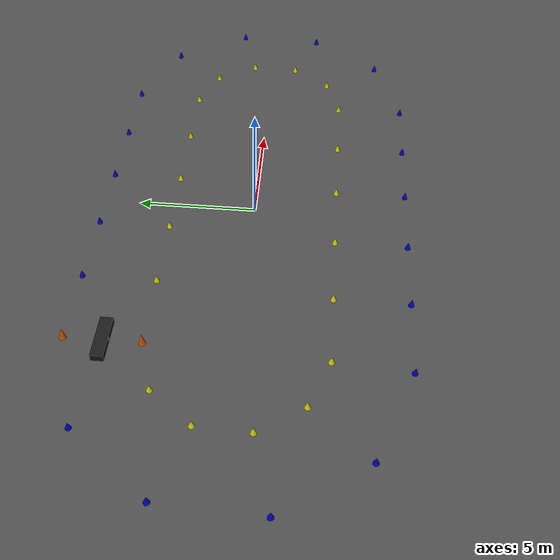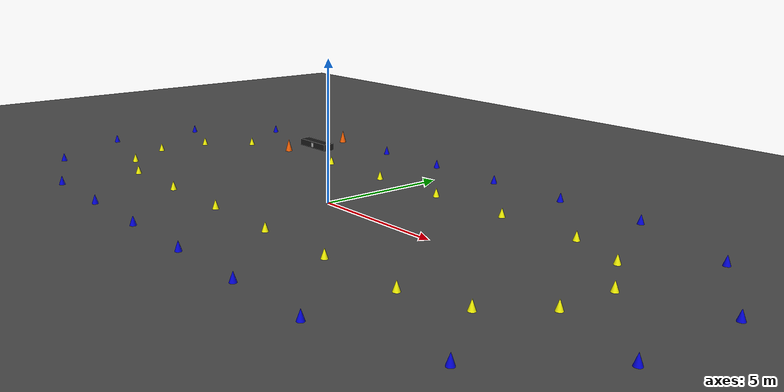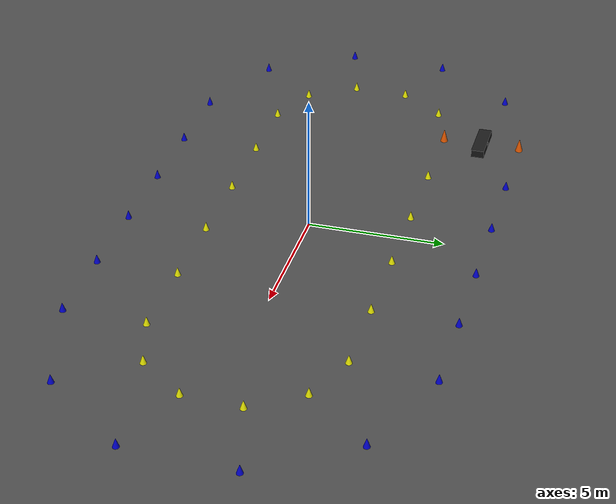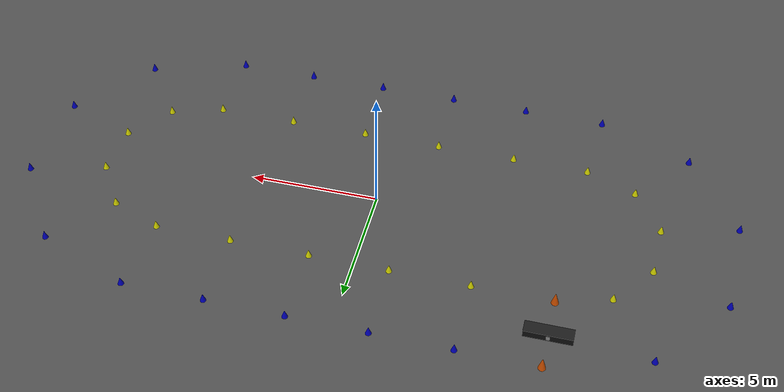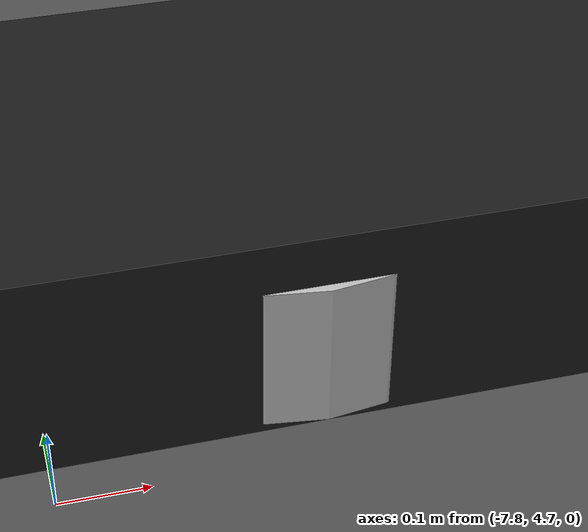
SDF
<?xml version="1.0" ?>
<sdf version="1.11">
  <world name="track">

    <!-- Physics: DART engine, 1 ms step. Good default for vehicle dynamics. -->
    <physics name="default" type="dart">
      <max_step_size>0.001</max_step_size>
      <real_time_factor>1.0</real_time_factor>
    </physics>

    <!-- Required Gazebo system plugins -->
    <plugin filename="gz-sim-physics-system"
            name="gz::sim::systems::Physics"/>
    <plugin filename="gz-sim-scene-broadcaster-system"
            name="gz::sim::systems::SceneBroadcaster"/>
    <plugin filename="gz-sim-user-commands-system"
            name="gz::sim::systems::UserCommands"/>
    <!-- Required for camera/lidar sensors to actually initialize and publish
         data — without this, sensor elements in a model are inert. -->
    <plugin filename="gz-sim-sensors-system"
            name="gz::sim::systems::Sensors">
      <render_engine>ogre2</render_engine>
    </plugin>

    <!-- Lighting -->
    <light name="sun" type="directional">
      <cast_shadows>true</cast_shadows>
      <pose>0 0 10 0 0 0</pose>
      <diffuse>0.8 0.8 0.8 1</diffuse>
      <specular>0.2 0.2 0.2 1</specular>
      <direction>-0.5 0.1 -0.9</direction>
    </light>

    <!-- Ground plane -->
    <model name="ground_plane">
      <static>true</static>
      <link name="link">
        <collision name="collision">
          <geometry>
            <plane>
              <normal>0 0 1</normal>
              <size>200 200</size>
            </plane>
          </geometry>
        </collision>
        <visual name="visual">
          <geometry>
            <plane>
              <normal>0 0 1</normal>
              <size>200 200</size>
            </plane>
          </geometry>
          <material>
            <ambient>0.3 0.3 0.3 1</ambient>
            <diffuse>0.3 0.3 0.3 1</diffuse>
          </material>
        </visual>
      </link>
    </model>

    <!-- FSD car, spawned at the start/finish gate -->
    <include>
      <uri>model://fsd_car</uri>
      <pose>-7.5 5.0 0.1 0 0 0</pose>
    </include>

    <!-- ==================== ORANGE — start/finish gate ==================== -->
    <include>
      <uri>model://cone_orange</uri>
      <name>cone_orange_00</name>
      <pose>-7.500 6.500 0.2525 0 0 0</pose>
    </include>
    <include>
      <uri>model://cone_orange</uri>
      <name>cone_orange_01</name>
      <pose>-7.500 3.500 0.2525 0 0 0</pose>
    </include>

    <!-- ==================== BLUE — left boundary ==================== -->
    <include>
      <uri>model://cone_blue</uri>
      <name>cone_blue_01</name>
      <pose>-4.429 6.500 0.1625 0 0 0</pose>
    </include>
    <include>
      <uri>model://cone_blue</uri>
      <name>cone_blue_02</name>
      <pose>-1.358 6.500 0.1625 0 0 0</pose>
    </include>
    <include>
      <uri>model://cone_blue</uri>
      <name>cone_blue_03</name>
      <pose>1.712 6.500 0.1625 0 0 0</pose>
    </include>
    <include>
      <uri>model://cone_blue</uri>
      <name>cone_blue_04</name>
      <pose>4.783 6.500 0.1625 0 0 0</pose>
    </include>
    <include>
      <uri>model://cone_blue</uri>
      <name>cone_blue_05</name>
      <pose>7.960 6.484 0.1625 0 0 0</pose>
    </include>
    <include>
      <uri>model://cone_blue</uri>
      <name>cone_blue_06</name>
      <pose>11.612 5.034 0.1625 0 0 0</pose>
    </include>
    <include>
      <uri>model://cone_blue</uri>
      <name>cone_blue_07</name>
      <pose>13.762 1.744 0.1625 0 0 0</pose>
    </include>
    <include>
      <uri>model://cone_blue</uri>
      <name>cone_blue_08</name>
      <pose>13.623 -2.183 0.1625 0 0 0</pose>
    </include>
    <include>
      <uri>model://cone_blue</uri>
      <name>cone_blue_09</name>
      <pose>11.246 -5.312 0.1625 0 0 0</pose>
    </include>
    <include>
      <uri>model://cone_blue</uri>
      <name>cone_blue_10</name>
      <pose>7.500 -6.500 0.1625 0 0 0</pose>
    </include>
    <include>
      <uri>model://cone_blue</uri>
      <name>cone_blue_11</name>
      <pose>4.429 -6.500 0.1625 0 0 0</pose>
    </include>
    <include>
      <uri>model://cone_blue</uri>
      <name>cone_blue_12</name>
      <pose>1.358 -6.500 0.1625 0 0 0</pose>
    </include>
    <include>
      <uri>model://cone_blue</uri>
      <name>cone_blue_13</name>
      <pose>-1.712 -6.500 0.1625 0 0 0</pose>
    </include>
    <include>
      <uri>model://cone_blue</uri>
      <name>cone_blue_14</name>
      <pose>-4.783 -6.500 0.1625 0 0 0</pose>
    </include>
    <include>
      <uri>model://cone_blue</uri>
      <name>cone_blue_15</name>
      <pose>-7.960 -6.484 0.1625 0 0 0</pose>
    </include>
    <include>
      <uri>model://cone_blue</uri>
      <name>cone_blue_16</name>
      <pose>-11.612 -5.034 0.1625 0 0 0</pose>
    </include>
    <include>
      <uri>model://cone_blue</uri>
      <name>cone_blue_17</name>
      <pose>-13.762 -1.744 0.1625 0 0 0</pose>
    </include>
    <include>
      <uri>model://cone_blue</uri>
      <name>cone_blue_18</name>
      <pose>-13.623 2.183 0.1625 0 0 0</pose>
    </include>
    <include>
      <uri>model://cone_blue</uri>
      <name>cone_blue_19</name>
      <pose>-11.246 5.312 0.1625 0 0 0</pose>
    </include>

    <!-- ==================== YELLOW — right boundary ==================== -->
    <include>
      <uri>model://cone_yellow</uri>
      <name>cone_yellow_01</name>
      <pose>-4.429 3.500 0.1625 0 0 0</pose>
    </include>
    <include>
      <uri>model://cone_yellow</uri>
      <name>cone_yellow_02</name>
      <pose>-1.358 3.500 0.1625 0 0 0</pose>
    </include>
    <include>
      <uri>model://cone_yellow</uri>
      <name>cone_yellow_03</name>
      <pose>1.712 3.500 0.1625 0 0 0</pose>
    </include>
    <include>
      <uri>model://cone_yellow</uri>
      <name>cone_yellow_04</name>
      <pose>4.783 3.500 0.1625 0 0 0</pose>
    </include>
    <include>
      <uri>model://cone_yellow</uri>
      <name>cone_yellow_05</name>
      <pose>7.748 3.491 0.1625 0 0 0</pose>
    </include>
    <include>
      <uri>model://cone_yellow</uri>
      <name>cone_yellow_06</name>
      <pose>9.714 2.711 0.1625 0 0 0</pose>
    </include>
    <include>
      <uri>model://cone_yellow</uri>
      <name>cone_yellow_07</name>
      <pose>10.872 0.939 0.1625 0 0 0</pose>
    </include>
    <include>
      <uri>model://cone_yellow</uri>
      <name>cone_yellow_08</name>
      <pose>10.797 -1.175 0.1625 0 0 0</pose>
    </include>
    <include>
      <uri>model://cone_yellow</uri>
      <name>cone_yellow_09</name>
      <pose>9.517 -2.860 0.1625 0 0 0</pose>
    </include>
    <include>
      <uri>model://cone_yellow</uri>
      <name>cone_yellow_10</name>
      <pose>7.500 -3.500 0.1625 0 0 0</pose>
    </include>
    <include>
      <uri>model://cone_yellow</uri>
      <name>cone_yellow_11</name>
      <pose>4.429 -3.500 0.1625 0 0 0</pose>
    </include>
    <include>
      <uri>model://cone_yellow</uri>
      <name>cone_yellow_12</name>
      <pose>1.358 -3.500 0.1625 0 0 0</pose>
    </include>
    <include>
      <uri>model://cone_yellow</uri>
      <name>cone_yellow_13</name>
      <pose>-1.712 -3.500 0.1625 0 0 0</pose>
    </include>
    <include>
      <uri>model://cone_yellow</uri>
      <name>cone_yellow_14</name>
      <pose>-4.783 -3.500 0.1625 0 0 0</pose>
    </include>
    <include>
      <uri>model://cone_yellow</uri>
      <name>cone_yellow_15</name>
      <pose>-7.748 -3.491 0.1625 0 0 0</pose>
    </include>
    <include>
      <uri>model://cone_yellow</uri>
      <name>cone_yellow_16</name>
      <pose>-9.714 -2.711 0.1625 0 0 0</pose>
    </include>
    <include>
      <uri>model://cone_yellow</uri>
      <name>cone_yellow_17</name>
      <pose>-10.872 -0.939 0.1625 0 0 0</pose>
    </include>
    <include>
      <uri>model://cone_yellow</uri>
      <name>cone_yellow_18</name>
      <pose>-10.797 1.175 0.1625 0 0 0</pose>
    </include>
    <include>
      <uri>model://cone_yellow</uri>
      <name>cone_yellow_19</name>
      <pose>-9.517 2.860 0.1625 0 0 0</pose>
    </include>
  </world>
</sdf>

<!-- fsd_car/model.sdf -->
<sdf version="1.10">
  <model name="fsd_car">

    <link name="chassis">
      <inertial>
        <mass>230</mass>           <!-- kg, total vehicle mass (placeholder, FS-typical) -->
        <inertia>
          <ixx>6.52</ixx>          <!-- kg·m², roll -->
          <iyy>63.8</iyy>          <!-- kg·m², pitch -->
          <izz>66.9</izz>          <!-- kg·m², yaw -->
          <ixy>0</ixy>
          <ixz>0</ixz>
          <iyz>0</iyz>
        </inertia>
      </inertial>
      <visual name="chassis_visual">
        <!-- TODO: replace box with a proper mesh once CAD is available -->
        <geometry>
          <box><size>1.8 0.5 0.3</size></box>  <!-- length width height, meters -->
        </geometry>
        <material>
          <ambient>0.1 0.1 0.1 1</ambient>
          <diffuse>0.1 0.1 0.1 1</diffuse>
        </material>
      </visual>
      <collision name="chassis_collision">
        <geometry>
          <box><size>1.8 0.5 0.3</size></box>
        </geometry>
      </collision>

      <sensor name="os1_128" type="gpu_lidar">
        <pose>0.3 0 0.35 0 0 0</pose>
        <update_rate>10</update_rate>
        <lidar>
          <scan>
            <horizontal>
              <samples>1024</samples>
              <min_angle>-3.14159</min_angle>
              <max_angle>3.14159</max_angle>
            </horizontal>
            <vertical>
              <samples>32</samples>
              <min_angle>-0.3927</min_angle>
              <max_angle>0.3927</max_angle>
            </vertical>
          </scan>
          <range>
            <min>0.3</min>
            <max>120.0</max>
          </range>
          <noise>
            <type>gaussian</type>
            <stddev>0.008</stddev>
          </noise>
        </lidar>
        <always_on>true</always_on>
        <visualize>false</visualize>
        <topic>/lidar/points</topic>
      </sensor>

      <sensor name="camera_front" type="camera">
        <pose>0.9 0 1.0 0 0.3 0</pose>  <!-- 1m up, pitched down ~17 deg -->
        <update_rate>30</update_rate>
        <camera>
          <image>
            <width>1440</width>
            <height>1080</height>
          </image>
          <horizontal_fov>0.7854</horizontal_fov>  <!-- 45 deg -->
        </camera>
        <always_on>true</always_on>
        <visualize>false</visualize>
        <topic>/camera/front/image</topic>
      </sensor>

      <sensor name="camera_left" type="camera">
        <pose>0.9 0 1.0 0 0.3 0.6</pose>  <!-- 1m up, pitched down ~17 deg, yawed ~34 deg left -->
        <update_rate>30</update_rate>
        <camera>
          <image>
            <width>1440</width>
            <height>1080</height>
          </image>
          <horizontal_fov>0.7854</horizontal_fov>  <!-- 45 deg -->
        </camera>
        <always_on>true</always_on>
        <visualize>false</visualize>
        <topic>/camera/left/image</topic>
      </sensor>

      <sensor name="camera_right" type="camera">
        <pose>0.9 0 1.0 0 0.3 -0.6</pose>  <!-- 1m up, pitched down ~17 deg, yawed ~34 deg right -->
        <update_rate>30</update_rate>
        <camera>
          <image>
            <width>1440</width>
            <height>1080</height>
          </image>
          <horizontal_fov>0.7854</horizontal_fov>  <!-- 45 deg -->
        </camera>
        <always_on>true</always_on>
        <visualize>false</visualize>
        <topic>/camera/right/image</topic>
      </sensor>

    </link> <!-- chassis -->

    <!-- ================================================================
         WHEELS — 4x (AWD, Ackermann front steering)
         ================================================================ -->

    <!-- Front-left -->
    <joint name="front_left_wheel_steering_joint" type="revolute">
      <parent>chassis</parent>
      <child>front_left_steering_knuckle</child>
      <axis>
        <xyz>0 0 1</xyz>
        <limit>
          <lower>-0.332</lower>   <!-- negative of steering_limit, radians -->
          <upper>0.332</upper>    <!-- steering_limit, radians -->
          <effort>1e6</effort>    <!-- DART only enforces position limits under
                                        velocity control if an effort limit is set -->
        </limit>
      </axis>
      <pose>0.775 0.6 -0.05 0 0 0</pose>
    </joint>

    <link name="front_left_steering_knuckle">
      <inertial>
        <mass>1</mass>
        <inertia><ixx>0.001</ixx><iyy>0.001</iyy><izz>0.001</izz><ixy>0</ixy><ixz>0</ixz><iyz>0</iyz></inertia>
      </inertial>
    </link>

    <joint name="front_left_wheel_joint" type="revolute">
      <parent>front_left_steering_knuckle</parent>
      <child>front_left_wheel</child>
      <axis><xyz>0 1 0</xyz></axis>
    </joint>

    <link name="front_left_wheel">
      <inertial>
        <mass>5</mass>
        <inertia><ixx>0.098</ixx><iyy>0.169</iyy><izz>0.098</izz><ixy>0</ixy><ixz>0</ixz><iyz>0</iyz></inertia>
      </inertial>
      <visual name="visual"><geometry><cylinder><radius>0.26</radius><length>0.18</length></cylinder></geometry></visual>
      <collision name="collision">
        <geometry><cylinder><radius>0.26</radius><length>0.18</length></cylinder></geometry>
        <surface><friction><ode>
          <mu>1.5</mu>    <!-- longitudinal grip -->
          <mu2>1.5</mu2>  <!-- lateral grip -->
        </ode></friction></surface>
      </collision>
    </link>

    <!-- Front-right (mirror of front-left, y flipped) -->
    <joint name="front_right_wheel_steering_joint" type="revolute">
      <parent>chassis</parent>
      <child>front_right_steering_knuckle</child>
      <axis>
        <xyz>0 0 1</xyz>
        <limit>
          <lower>-0.332</lower>
          <upper>0.332</upper>
          <effort>1e6</effort>
        </limit>
      </axis>
      <pose>0.775 -0.6 -0.05 0 0 0</pose>
    </joint>

    <link name="front_right_steering_knuckle">
      <inertial>
        <mass>1</mass>
        <inertia><ixx>0.001</ixx><iyy>0.001</iyy><izz>0.001</izz><ixy>0</ixy><ixz>0</ixz><iyz>0</iyz></inertia>
      </inertial>
    </link>

    <joint name="front_right_wheel_joint" type="revolute">
      <parent>front_right_steering_knuckle</parent>
      <child>front_right_wheel</child>
      <axis><xyz>0 1 0</xyz></axis>
    </joint>

    <link name="front_right_wheel">
      <inertial>
        <mass>5</mass>
        <inertia><ixx>0.098</ixx><iyy>0.169</iyy><izz>0.098</izz><ixy>0</ixy><ixz>0</ixz><iyz>0</iyz></inertia>
      </inertial>
      <visual name="visual"><geometry><cylinder><radius>0.26</radius><length>0.18</length></cylinder></geometry></visual>
      <collision name="collision">
        <geometry><cylinder><radius>0.26</radius><length>0.18</length></cylinder></geometry>
        <surface><friction><ode>
          <mu>1.5</mu>
          <mu2>1.5</mu2>
        </ode></friction></surface>
      </collision>
    </link>

    <joint name="rear_left_wheel_joint" type="revolute">
      <parent>chassis</parent>
      <child>rear_left_wheel</child>
      <axis><xyz>0 1 0</xyz></axis>
      <pose>-0.775 0.6 -0.05 0 0 0</pose>
    </joint>

    <link name="rear_left_wheel">
      <inertial>
        <mass>5</mass>
        <inertia><ixx>0.098</ixx><iyy>0.169</iyy><izz>0.098</izz><ixy>0</ixy><ixz>0</ixz><iyz>0</iyz></inertia>
      </inertial>
      <visual name="visual"><geometry><cylinder><radius>0.26</radius><length>0.18</length></cylinder></geometry></visual>
      <collision name="collision">
        <geometry><cylinder><radius>0.26</radius><length>0.18</length></cylinder></geometry>
        <surface><friction><ode>
          <mu>1.5</mu>
          <mu2>1.5</mu2>
        </ode></friction></surface>
      </collision>
    </link>

    <joint name="rear_right_wheel_joint" type="revolute">
      <parent>chassis</parent>
      <child>rear_right_wheel</child>
      <axis><xyz>0 1 0</xyz></axis>
      <pose>-0.775 -0.6 -0.05 0 0 0</pose>
    </joint>

    <link name="rear_right_wheel">
      <inertial>
        <mass>5</mass>
        <inertia><ixx>0.098</ixx><iyy>0.169</iyy><izz>0.098</izz><ixy>0</ixy><ixz>0</ixz><iyz>0</iyz></inertia>
      </inertial>
      <visual name="visual"><geometry><cylinder><radius>0.26</radius><length>0.18</length></cylinder></geometry></visual>
      <collision name="collision">
        <geometry><cylinder><radius>0.26</radius><length>0.18</length></cylinder></geometry>
        <surface><friction><ode>
          <mu>1.5</mu>
          <mu2>1.5</mu2>
        </ode></friction></surface>
      </collision>
    </link>

    <plugin filename="gz-sim-ackermann-steering-system"
            name="gz::sim::systems::AckermannSteering">
      <!-- Driven wheels (AWD: both front and rear) -->
      <left_joint>front_left_wheel_joint</left_joint>
      <left_joint>rear_left_wheel_joint</left_joint>
      <right_joint>front_right_wheel_joint</right_joint>
      <right_joint>rear_right_wheel_joint</right_joint>

      <!-- Steering joints (front axle only) -->
      <left_steering_joint>front_left_wheel_steering_joint</left_steering_joint>
      <right_steering_joint>front_right_wheel_steering_joint</right_steering_joint>

      <kingpin_width>1.2</kingpin_width>       <!-- meters -->
      <wheel_base>1.55</wheel_base>            <!-- meters, front-to-rear axle distance -->
      <wheel_separation>1.2</wheel_separation> <!-- meters, track width -->
      <wheel_radius>0.26</wheel_radius>        <!-- meters -->
      <steering_limit>0.332</steering_limit>   <!-- radians; atan(wheel_base / min_turning_radius),
                                                     here assuming a 4.5m min turning radius -->

      <min_velocity>-5</min_velocity>          <!-- m/s, typically negative for reverse -->
      <max_velocity>20</max_velocity>
      <min_acceleration>-8</min_acceleration>  <!-- m/s² -->
      <max_acceleration>5</max_acceleration>   <!-- m/s² -->

      <!-- gz-transport topic the control process publishes commands to -->
      <topic>/cmd_ackermann</topic>
    </plugin>

    <!-- Required: broadcasts joint states so the steering works in simulation -->
    <plugin filename="gz-sim-joint-state-publisher-system"
            name="gz::sim::systems::JointStatePublisher"/>

  </model>
</sdf>

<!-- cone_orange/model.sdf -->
<!--
  Orange "big" cone — start/finish gate marker. FS-standard big-cone
  dimensions (placeholder): 0.1425m base radius, 0.505m tall.
-->
<sdf version="1.11">
  <model name="cone_orange">
    <static>true</static>
    <link name="link">
      <visual name="visual">
        <geometry>
          <cone><radius>0.1425</radius><length>0.505</length></cone>
        </geometry>
        <material>
          <ambient>0.9 0.35 0 1</ambient>
          <diffuse>0.9 0.35 0 1</diffuse>
        </material>
      </visual>
      <collision name="collision">
        <geometry>
          <cone><radius>0.1425</radius><length>0.505</length></cone>
        </geometry>
      </collision>
    </link>
  </model>
</sdf>

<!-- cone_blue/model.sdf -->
<sdf version="1.11">
  <model name="cone_blue">
    <static>true</static>
    <link name="link">
      <visual name="visual">
        <geometry>
          <cone><radius>0.115</radius><length>0.325</length></cone>
        </geometry>
        <material>
          <ambient>0 0 0.8 1</ambient>
          <diffuse>0 0 0.8 1</diffuse>
        </material>
      </visual>
      <collision name="collision">
        <geometry>
          <cone><radius>0.115</radius><length>0.325</length></cone>
        </geometry>
      </collision>
    </link>
  </model>
</sdf>

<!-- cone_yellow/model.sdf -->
<!--
  Yellow boundary cone. Same dimensions as cone_blue, different color.
-->
<sdf version="1.11">
  <model name="cone_yellow">
    <static>true</static>
    <link name="link">
      <visual name="visual">
        <geometry>
          <cone><radius>0.115</radius><length>0.325</length></cone>
        </geometry>
        <material>
          <ambient>0.9 0.9 0 1</ambient>
          <diffuse>0.9 0.9 0 1</diffuse>
        </material>
      </visual>
      <collision name="collision">
        <geometry>
          <cone><radius>0.115</radius><length>0.325</length></cone>
        </geometry>
      </collision>
    </link>
  </model>
</sdf>
